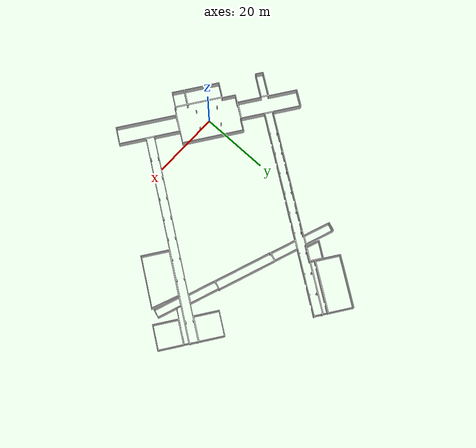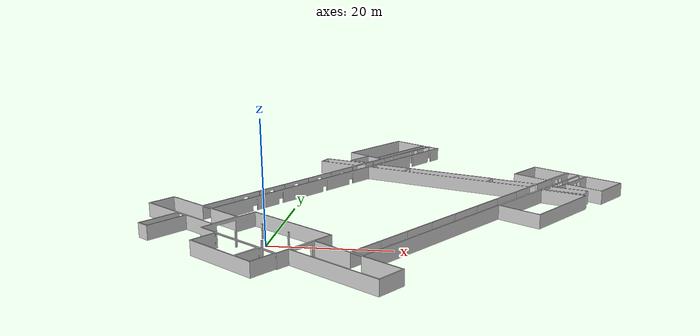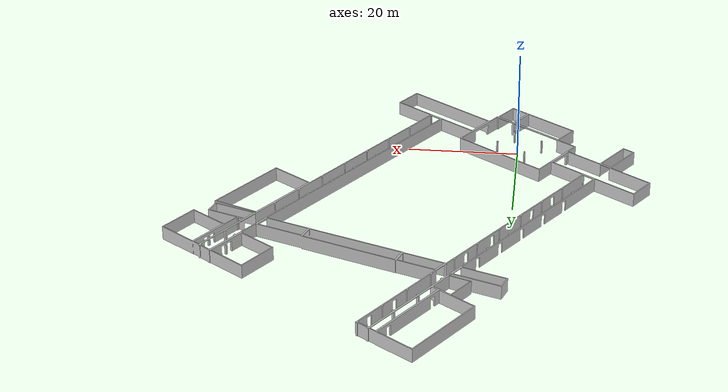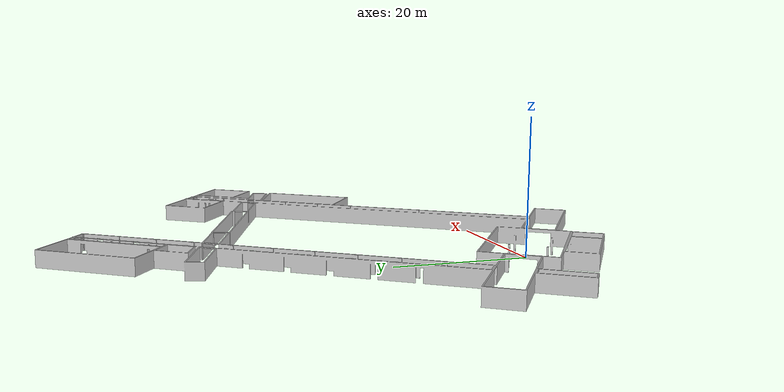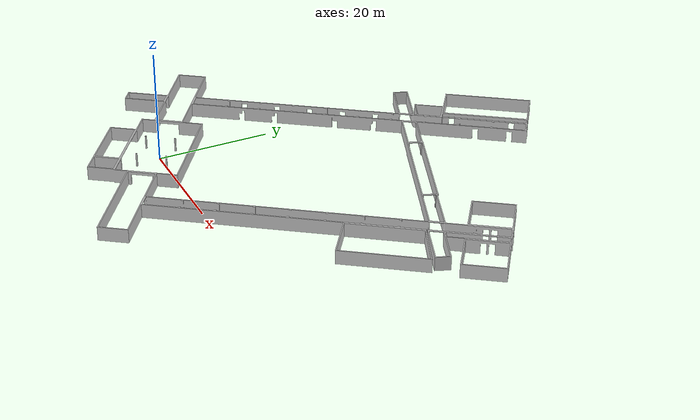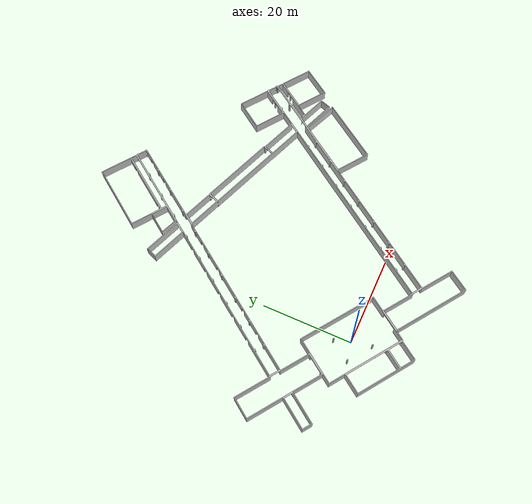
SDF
<?xml version="1.0" ?>
<sdf version="1.6">
  <model name="frontiers_brsu_building_c">
    <link name="link">
      <visual name="visual">
	    <geometry>
          <mesh>
            <uri>model://frontiers_brsu_building_c/meshes/frontiers_brsu_building_c.stl</uri>
          </mesh>
        </geometry>
      </visual>
      <collision name="collision">
        <geometry>
          <mesh>
            <uri>model://frontiers_brsu_building_c/meshes/frontiers_brsu_building_c.stl</uri>
          </mesh>
        </geometry>
      </collision>
    </link>
  <static>1</static>
  </model>
</sdf>
